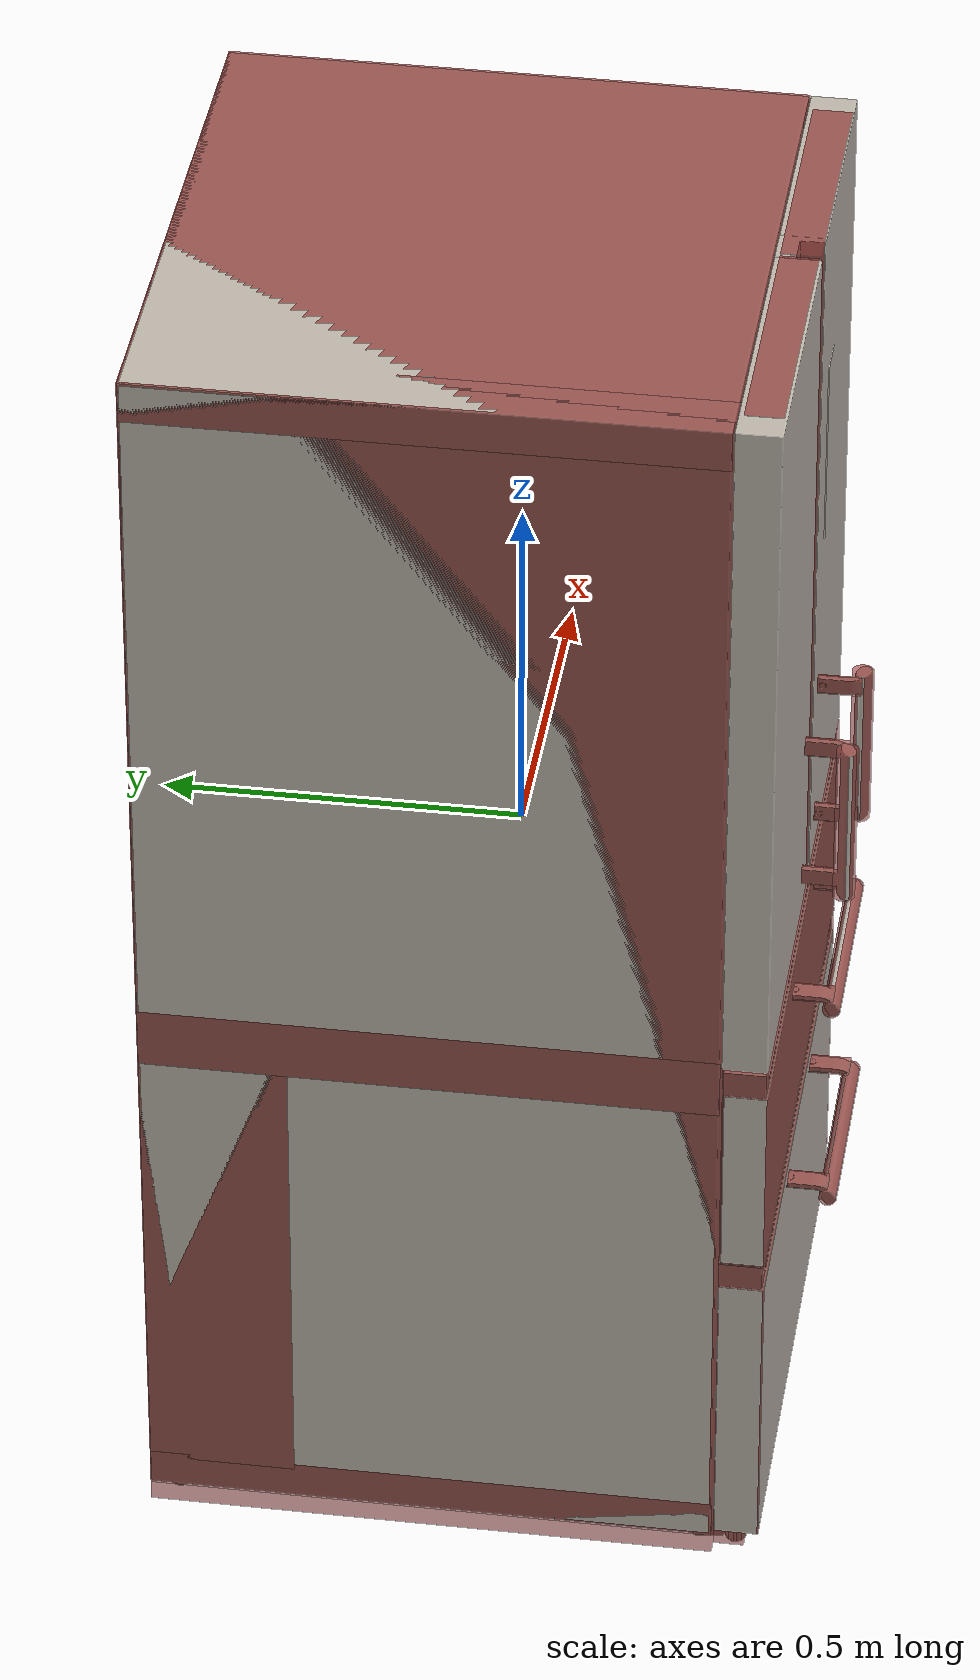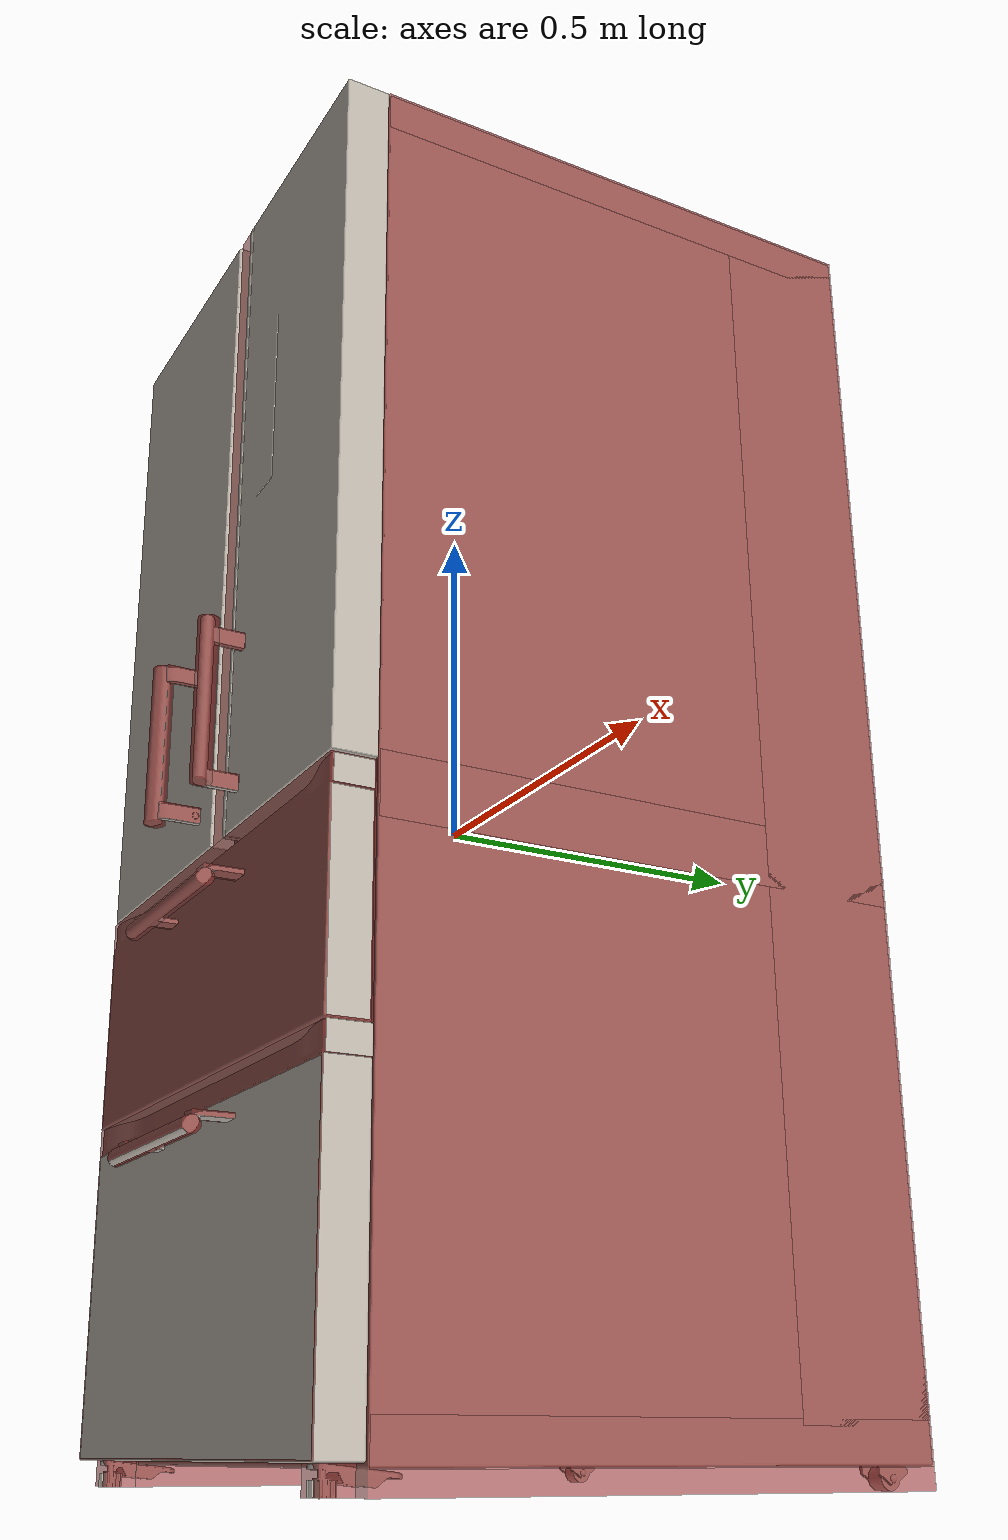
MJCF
<?xml version='1.0' encoding='UTF-8'?>
<mujoco model="model">
  <option timestep="0.002" gravity="0.0 0.0 -9.81"/>
  <compiler angle="radian"/>
  <asset>
    <mesh file="visuals/freezer0.obj" name="freezer0_vis"/>
    <mesh file="visuals/freezer1.obj" name="freezer1_vis"/>
    <mesh file="visuals/fridge_drawer0.obj" name="fridge_drawer0_vis"/>
    <mesh file="visuals/fridge_left_door.obj" name="fridge_left_door_vis"/>
    <mesh file="visuals/fridge_left_door_Clear.obj" name="fridge_left_door_Clear_vis"/>
    <mesh file="visuals/fridge_right_door.obj" name="fridge_right_door_vis"/>
    <mesh file="visuals/fridge_right_door_Clear.obj" name="fridge_right_door_Clear_vis"/>
    <mesh file="visuals/Body001.obj" name="Body001_vis"/>
    <mesh file="visuals/Body001_Clear.obj" name="Body001_Clear_vis"/>
    <texture file="visuals/T_BC001.png" name="Body001_material" type="2d"/>
    <material name="Body001_material" rgba="1 1 1 1.0" texture="Body001_material" shininess="0.1" specular="5"/>
    <texture file="visuals/T_BC001.png" name="freezer0_material" type="2d"/>
    <material name="freezer0_material" rgba="1 1 1 1.0" texture="freezer0_material" shininess="0.1" specular="5"/>
    <texture file="visuals/T_BC001.png" name="freezer1_material" type="2d"/>
    <material name="freezer1_material" rgba="1 1 1 1.0" texture="freezer1_material" shininess="0.1" specular="5"/>
    <texture file="visuals/T_BC001.png" name="fridge_drawer0_material" type="2d"/>
    <material name="fridge_drawer0_material" rgba="1 1 1 1.0" texture="fridge_drawer0_material" shininess="0.1" specular="5"/>
    <texture file="visuals/T_BC001.png" name="fridge_left_door_material" type="2d"/>
    <material name="fridge_left_door_material" rgba="1 1 1 1.0" texture="fridge_left_door_material" shininess="0.1" specular="5"/>
    <material name="fridge_left_door_Clear_material" rgba="0.749724805355072 0.749724805355072 0.749724805355072 0.699999988079071" shininess="0.141421377658844" specular="0.3103448502657381"/>
    <texture file="visuals/T_BC001.png" name="fridge_right_door_material" type="2d"/>
    <material name="fridge_right_door_material" rgba="1 1 1 1.0" texture="fridge_right_door_material" shininess="0.1" specular="5"/>
    <material name="fridge_right_door_Clear_material" rgba="0.749724805355072 0.749724805355072 0.749724805355072 0.699999988079071" shininess="0.141421377658844" specular="0.3103448502657381"/>
    <material name="Body001_Clear_material" rgba="0.749724805355072 0.749724805355072 0.749724805355072 0.699999988079071" shininess="0.141421377658844" specular="0.3103448502657381"/>
  </asset>
  <default>
    <default class="visual">
      <geom conaffinity="0" contype="0" group="1" type="mesh"/>
    </default>
    <default class="collision">
      <geom group="0" rgba="0.5 0 0 0.5"/>
    </default>
    <default class="spawn">
      <geom group="0" rgba="1 1 1 0.5" contype="0" conaffinity="0"/>
      <site group="0" rgba="1 1 1 0.5"/>
    </default>
    <default class="region">
      <geom group="1" conaffinity="0" contype="0" rgba="0 1 0 0"/>
    </default>
  </default>
  <worldbody>
    <body>
      <body name="object">
        <geom mesh="Body001_vis" type="mesh" solimp="0.998 0.998 0.001" solref="0.001 1" friction="0.95 0.3 0.1" class="visual" material="Body001_material"/>
        <geom class="collision" type="box" pos="3.725290298461914e-08 0.36271440982818604 0.03870001435279846" size="0.420244961977005 0.10254697501659393 0.8938395977020264" quat="1.0 0.0 0.0 0.0"/>
        <geom class="collision" type="box" pos="-0.383768230676651 0.06786757707595825 5.960464477539063e-08" size="0.036476727575063705 0.3973938226699829 0.9325395822525024" quat="1.0 0.0 0.0 0.0"/>
        <geom class="collision" type="box" pos="2.421438694000244e-08 0.06850025057792664 0.903540849685669" size="0.420244961977005 0.3967611789703369 0.02899870276451111" quat="1.0 0.0 0.0 0.0"/>
        <geom class="collision" type="box" pos="0.3831482529640198 0.06786757707595825 5.960464477539063e-08" size="0.037096697837114334 0.3973938226699829 0.9325395822525024" quat="1.0 0.0 0.0 0.0"/>
        <geom class="collision" type="box" pos="2.421438694000244e-08 0.06850025057792664 -0.11745168268680573" size="0.420244961977005 0.3967611789703369 0.043764565140008926" quat="1.0 0.0 0.0 0.0"/>
        <geom class="collision" type="box" pos="2.421438694000244e-08 0.06850025057792664 -0.8751527070999146" size="0.420244961977005 0.3967611789703369 0.028090566396713257" quat="1.0 0.0 0.0 0.0"/>
        <geom class="collision" type="box" pos="-0.0033921580761671066 -0.031038135290145874 0.5593169331550598" size="0.343149870634079 0.2678984999656677 0.0039847237057983875" quat="1.0 0.0 0.0 0.0"/>
        <geom class="collision" type="box" pos="-0.0033921580761671066 -0.04376785457134247 0.23902767896652222" size="0.34315016865730286 0.25470054149627686 0.003984728362411261" quat="1.0 0.0 0.0 0.0"/>
        <geom class="collision" type="box" pos="0.32959818840026855 -0.020736010745167732 0.5447321534156799" size="0.012320316396653652 0.25215694308280945 0.009214059449732304" quat="1.0 0.0 0.0 0.0"/>
        <geom class="collision" type="box" pos="-0.3379121422767639 -0.020736010745167732 0.5447321534156799" size="0.012320316396653652 0.25215694308280945 0.009214059449732304" quat="1.0 0.0 0.0 0.0"/>
        <geom class="collision" type="box" pos="-0.3379121422767639 -0.020736010745167732 0.22500215470790863" size="0.012320316396653652 0.25215694308280945 0.009214059449732304" quat="1.0 0.0 0.0 0.0"/>
        <geom class="collision" type="box" pos="0.32959818840026855 -0.020736010745167732 0.2252790331840515" size="0.012320316396653652 0.25215694308280945 0.009214059449732304" quat="1.0 0.0 0.0 0.0"/>
        <geom class="collision" type="box" pos="-0.3760225772857666 -0.35117390751838684 -0.9146504998207092" size="0.024222981184720993 0.021375611424446106 0.01788906380534172" quat="1.0 0.0 0.0 0.0"/>
        <geom class="collision" type="box" pos="0.36534348130226135 -0.35117390751838684 -0.9146504998207092" size="0.024222981184720993 0.021375611424446106 0.01788906380534172" quat="1.0 0.0 0.0 0.0"/>
        <body name="freezer0">
          <geom class="region" name="reg_freezer0" type="box" pos="0.0014047771692276 -0.022263318300247192 -0.6815381944179535" size="0.3173868933916092 0.25350178575515747 0.1460309455394745"/>
          <joint axis="0.0 -1.0 0.0" pos="0.0007861773483455181 -0.1080847829580307 -0.6571972370147705" limited="true" name="freezer0_door_joint" range="0.0 0.4" type="slide" damping="1" frictionloss="1" armature=".01" stiffness="0.05"/>
          <geom mesh="freezer0_vis" type="mesh" solimp="0.998 0.998 0.001" solref="0.001 1" friction="0.95 0.3 0.1" class="visual" material="freezer0_material"/>
          <geom class="collision" type="box" pos="0.000501888629514724 -0.3628769516944885 -0.6571394801139832" size="0.41758543252944946 0.031223760917782784 0.23801378905773163" quat="1.0 0.0 0.0 0.0" name="freezer0_door_main"/>
          <geom class="collision" type="box" pos="-0.3265295922756195 -0.03776751458644867 -0.6844683885574341" size="0.005799757782369852 0.28701984882354736 0.15341390669345856" quat="1.0 0.0 0.0 0.0"/>
          <geom class="collision" type="box" pos="0.00012455659452825785 0.2432796210050583 -0.6819210052490234" size="0.3350304663181305 0.0061573004350066185 0.15099649131298065" quat="1.0 0.0 0.0 0.0"/>
          <geom class="collision" type="box" pos="0.3293297588825226 -0.03776751458644867 -0.6844683885574341" size="0.005709691904485226 0.2870204448699951 0.15341418981552124" quat="1.0 0.0 0.0 0.0"/>
          <geom class="collision" type="box" pos="0.0007342882454395294 -0.0365728922188282 -0.8359146118164062" size="0.33688220381736755 0.2882153391838074 0.003502693260088563" quat="1.0 0.0 0.0 0.0"/>
          <geom class="collision" type="cylinder" pos="0.0024487851187586784 -0.45155343413352966 -0.5024803876876831" size="0.012515487149357796 0.15056449174880981" quat="0.7071068286895752 -0.0 0.7071067690849304 0.0" name="freezer0_door_handle_main"/>
          <geom class="collision" type="box" pos="-0.13126640021800995 -0.41574499011039734 -0.48698410391807556" size="0.014911450445652008 0.0346040315926075 0.00388008332811296" quat="1.0 0.0 0.0 0.0" name="freezer0_door_handle_1"/>
          <geom class="collision" type="box" pos="0.13468211889266968 -0.41574499011039734 -0.48698410391807556" size="0.01579238660633564 0.0346040315926075 0.00388008332811296" quat="1.0 0.0 0.0 0.0" name="freezer0_door_handle_2"/>
          <geom class="collision" type="box" pos="0.003610596526414156 -0.3075786530971527 -0.6721328496932983" size="0.32557451725006104 0.02526956982910633 0.16693054139614105" quat="1.0 0.0 0.0 0.0"/>
        </body>
        <body name="freezer1">
          <geom class="region" name="reg_freezer1" type="box" pos="-0.0008147507905960083 -0.020963557064533234 -0.2688698396086693" size="0.32515546476840973 0.2597028965353966 0.08024974709749222"/>
          <joint axis="0.0 -1.0 0.0" pos="-0.0002827136777341366 -0.10345551371574402 -0.2524600028991699" limited="true" name="freezer1_door_joint" range="0.0 0.4" type="slide" damping="1" frictionloss="1" armature=".01" stiffness="0.05"/>
          <geom mesh="freezer1_vis" type="mesh" solimp="0.998 0.998 0.001" solref="0.001 1" friction="0.95 0.3 0.1" class="visual" material="freezer1_material"/>
          <geom class="collision" type="box" pos="0.13133274018764496 -0.41574499011039734 -0.16297851502895355" size="0.01579238660633564 0.0346040315926075 0.00388008332811296" quat="1.0 0.0 0.0 0.0" name="freezer1_door_handle_2"/>
          <geom class="collision" type="box" pos="-0.1272403597831726 -0.41574499011039734 -0.16297851502895355" size="0.014911450445652008 0.0346040315926075 0.00388008332811296" quat="1.0 0.0 0.0 0.0" name="freezer1_door_handle_1"/>
          <geom class="collision" type="cylinder" pos="0.0023994995281100273 -0.44855526089668274 -0.17801834642887115" size="0.012515487149357796 0.14645937085151672" quat="0.7071068286895752 -0.0 0.7071067690849304 0.0" name="freezer1_door_handle_main"/>
          <geom class="collision" type="box" pos="0.0007342882454395294 -0.0365728922188282 -0.35785308480262756" size="0.3368796110153198 0.28821274638175964 0.003502652747556567" quat="1.0 0.0 0.0 0.0"/>
          <geom class="collision" type="box" pos="0.33268946409225464 -0.03697865828871727 -0.27170833945274353" size="0.003571681911125779 0.28780725598335266 0.08811339735984802" quat="1.0 0.0 0.0 0.0"/>
          <geom class="collision" type="box" pos="0.00012455659452825785 0.2496434450149536 -0.2691609263420105" size="0.3350290358066559 0.00615725526586175 0.08569592237472534" quat="1.0 0.0 0.0 0.0"/>
          <geom class="collision" type="box" pos="-0.33419832587242126 -0.03697865828871727 -0.27170833945274353" size="0.003375586587935686 0.2878078520298004 0.08811354637145996" quat="1.0 0.0 0.0 0.0"/>
          <geom class="collision" type="box" pos="-0.00016142586537171155 -0.3627449870109558 -0.25261422991752625" size="0.4188118577003479 0.031091785058379173 0.16448022425174713" quat="1.0 0.0 0.0 0.0" name="freezer1_door_main"/>
          <geom class="collision" type="box" pos="0.003610596526414156 -0.3093831241130829 -0.27542468905448914" size="0.32557451725006104 0.02346511371433735 0.10049207508563995" quat="1.0 0.0 0.0 0.0"/>
        </body>
        <body name="fridge_drawer0">
          <geom class="region" name="reg_fridge_drawer0" type="box" pos="-0.00048007071018218994 0.0004540085792541504 0.0877399486489594" size="0.3050018230676651 0.20271432197093964 0.09919079516455531"/>
          <joint axis="0.0 -1.0 0.0" pos="-0.0009992157574743032 -0.009178592823445797 0.08161954581737518" limited="true" name="fridge_drawer0_joint" range="0.0 0.45" type="slide" damping="1" frictionloss="1" armature=".01" stiffness="0.05"/>
          <geom mesh="fridge_drawer0_vis" type="mesh" solimp="0.998 0.998 0.001" solref="0.001 1" friction="0.95 0.3 0.1" class="visual" material="fridge_drawer0_material"/>
          <geom class="collision" type="box" pos="-0.00010304944589734077 -0.22352641820907593 0.17765425145626068" size="0.3263534605503082 0.015158834867179394 0.025532877072691917" quat="1.0 0.0 0.0 0.0"/>
          <geom class="collision" type="box" pos="-0.0006536231376230717 0.0015832597855478525 -0.020570896565914154" size="0.31079521775245667 0.21130329370498657 0.0041618673130869865" quat="1.0 0.0 0.0 0.0"/>
          <geom class="collision" type="box" pos="0.002024431247264147 0.21657805144786835 0.08574830740690231" size="0.3109680116176605 0.005564892198890448 0.10538765043020248" quat="1.0 0.0 0.0 0.0"/>
          <geom class="collision" type="box" pos="-0.3170004189014435 0.003999524749815464 0.08574831485748291" size="0.005672971718013287 0.2138131707906723 0.10538768023252487" quat="1.0 0.0 0.0 0.0"/>
          <geom class="collision" type="box" pos="0.31603583693504333 0.00970494281500578 0.0857483297586441" size="0.005672986153513193 0.21951986849308014 0.10538770258426666" quat="1.0 0.0 0.0 0.0"/>
          <geom class="collision" type="box" pos="-0.00010304944589734077 -0.22283580899238586 0.017555980011820793" size="0.3263881802558899 0.015851691365242004 0.06095428392291069" quat="1.0 0.0 0.0 0.0"/>
          <geom class="collision" type="box" pos="-0.18560145795345306 -0.22352641820907593 0.11375938355922699" size="0.14089567959308624 0.015161125920712948 0.03786836192011833" quat="1.0 0.0 0.0 0.0"/>
          <geom class="collision" type="box" pos="0.20693247020244598 -0.22352641820907593 0.11375938355922699" size="0.11823832988739014 0.015161196701228619 0.03786836192011833" quat="1.0 0.0 0.0 0.0"/>
          <geom class="collision" type="box" pos="0.023325106129050255 -0.23617392778396606 0.13930220901966095" size="0.06702551245689392 0.0025141588412225246 0.012567557394504547" quat="1.0 0.0 0.0 0.0"/>
          <geom class="collision" type="box" pos="0.023325106129050255 -0.2100522667169571 0.11408466100692749" size="0.06702577322721481 0.0013392593245953321 0.036608051508665085" quat="1.0 0.0 0.0 0.0"/>
        </body>
        <body name="fridge_left_door">
          <joint axis="0.0 0.0 -1.0" pos="-0.3864901065826416 -0.3609431982040405 0.44345515966415405" limited="true" name="fridge_left_door_joint" range="0.0 1.5707963267948966" type="hinge" damping="1" frictionloss="1" armature=".01" stiffness="0.05"/>
          <geom mesh="fridge_left_door_vis" type="mesh" solimp="0.998 0.998 0.001" solref="0.001 1" friction="0.95 0.3 0.1" class="visual" material="fridge_left_door_material"/>
          <geom class="collision" type="box" pos="-0.046793416142463684 -0.4180055856704712 0.19212187826633453" size="0.005391678307205439 0.03605390340089798 0.01194847747683525" quat="1.0 0.0 0.0 0.0" name="fridge_left_door_handle_1"/>
          <geom class="collision" type="box" pos="-0.046793416142463684 -0.4180055856704712 -0.022409191355109215" size="0.005391678307205439 0.03605390340089798 0.011779187247157097" quat="1.0 0.0 0.0 0.0" name="fridge_left_door_handle_2"/>
          <geom class="collision" type="box" pos="-0.19422337412834167 -0.35832902789115906 0.7967945337295532" size="0.13999596238136292 0.0018340981332585216 0.032336894422769547" quat="1.0 0.0 0.0 0.0"/>
          <geom class="collision" type="box" pos="-0.19533081352710724 -0.31266695261001587 0.7686464190483093" size="0.13915126025676727 0.04666637256741524 0.004413849674165249" quat="1.0 0.0 0.0 0.0"/>
          <geom class="collision" type="box" pos="-0.19422337412834167 -0.2726524770259857 0.7967945337295532" size="0.13999596238136292 0.0018340981332585216 0.032336894422769547" quat="0.9952298998832703 0.09755751490592957 0.0 0.0"/>
          <geom class="collision" type="box" pos="-0.33259207010269165 -0.31493836641311646 0.7967945337295532" size="0.0022138787899166346 0.0426444411277771 0.032336894422769547" quat="1.0 0.0 0.0 0.0"/>
          <geom class="collision" type="box" pos="-0.05629025772213936 -0.31493836641311646 0.7967945337295532" size="0.0022138787899166346 0.0426444411277771 0.032336894422769547" quat="1.0 0.0 0.0 0.0"/>
          <geom class="collision" type="box" pos="-0.19422337412834167 -0.35832902789115906 0.44336405396461487" size="0.13999596238136292 0.0018340981332585216 0.032336894422769547" quat="1.0 0.0 0.0 0.0"/>
          <geom class="collision" type="box" pos="-0.05629025772213936 -0.31493836641311646 0.44336405396461487" size="0.0022138787899166346 0.0426444411277771 0.032336894422769547" quat="1.0 0.0 0.0 0.0"/>
          <geom class="collision" type="box" pos="-0.33259207010269165 -0.31493836641311646 0.44336405396461487" size="0.0022138787899166346 0.0426444411277771 0.032336894422769547" quat="1.0 0.0 0.0 0.0"/>
          <geom class="collision" type="box" pos="-0.19422337412834167 -0.2726524770259857 0.44336405396461487" size="0.13999596238136292 0.0018340981332585216 0.032336894422769547" quat="0.9952298998832703 0.09755751490592957 0.0 0.0"/>
          <geom class="collision" type="box" pos="-0.19533081352710724 -0.31266695261001587 0.41521593928337097" size="0.13915126025676727 0.04666637256741524 0.004413849674165249" quat="1.0 0.0 0.0 0.0"/>
          <geom class="collision" type="cylinder" pos="-0.0658530592918396 -0.45307570695877075 0.08398246765136719" size="0.015368785709142685 0.12188371270895004" quat="1.0 0.0 0.0 0.0" name="fridge_left_door_handle_main"/>
          <geom class="collision" type="box" pos="-0.18426960706710815 -0.36300912499427795 0.4235662519931793" size="0.19255331158638 0.026028752326965332 0.5096153020858765" quat="1.0 0.0 0.0 0.0" name="fridge_left_door_main"/>
          <body name="fridge_left_door_Clear">
            <geom mesh="fridge_left_door_Clear_vis" type="mesh" solimp="0.998 0.998 0.001" solref="0.001 1" friction="0.95 0.3 0.1" class="visual" material="fridge_left_door_Clear_material"/>
            <geom class="collision" type="box" pos="-0.19422337412834167 -0.35832902789115906 0.7967945337295532" size="0.13999596238136292 0.0018340981332585216 0.032336894422769547" quat="1.0 0.0 0.0 0.0"/>
            <geom class="collision" type="box" pos="-0.19533081352710724 -0.31266695261001587 0.7686464190483093" size="0.13915126025676727 0.04666637256741524 0.004413849674165249" quat="1.0 0.0 0.0 0.0"/>
            <geom class="collision" type="box" pos="-0.19422337412834167 -0.2726524770259857 0.7967945337295532" size="0.13999596238136292 0.0018340981332585216 0.032336894422769547" quat="0.9952298998832703 0.09755751490592957 0.0 0.0"/>
            <geom class="collision" type="box" pos="-0.33259207010269165 -0.31493836641311646 0.7967945337295532" size="0.0022138787899166346 0.0426444411277771 0.032336894422769547" quat="1.0 0.0 0.0 0.0"/>
            <geom class="collision" type="box" pos="-0.05629025772213936 -0.31493836641311646 0.7967945337295532" size="0.0022138787899166346 0.0426444411277771 0.032336894422769547" quat="1.0 0.0 0.0 0.0"/>
            <geom class="collision" type="box" pos="-0.19422337412834167 -0.35832902789115906 0.44336405396461487" size="0.13999596238136292 0.0018340981332585216 0.032336894422769547" quat="1.0 0.0 0.0 0.0"/>
            <geom class="collision" type="box" pos="-0.05629025772213936 -0.31493836641311646 0.44336405396461487" size="0.0022138787899166346 0.0426444411277771 0.032336894422769547" quat="1.0 0.0 0.0 0.0"/>
            <geom class="collision" type="box" pos="-0.33259207010269165 -0.31493836641311646 0.44336405396461487" size="0.0022138787899166346 0.0426444411277771 0.032336894422769547" quat="1.0 0.0 0.0 0.0"/>
            <geom class="collision" type="box" pos="-0.19422337412834167 -0.2726524770259857 0.44336405396461487" size="0.13999596238136292 0.0018340981332585216 0.032336894422769547" quat="0.9952298998832703 0.09755751490592957 0.0 0.0"/>
            <geom class="collision" type="box" pos="-0.19533081352710724 -0.31266695261001587 0.41521593928337097" size="0.13915126025676727 0.04666637256741524 0.004413849674165249" quat="1.0 0.0 0.0 0.0"/>
          </body>
        </body>
        <body name="fridge_right_door">
          <joint axis="0.0 0.0 1.0" pos="0.3863397538661957 -0.3625793755054474 0.44345515966415405" limited="true" name="fridge_right_door_joint" range="0.0 1.5707963267948966" type="hinge" damping="1" frictionloss="1" armature=".01" stiffness="0.05"/>
          <geom mesh="fridge_right_door_vis" type="mesh" solimp="0.998 0.998 0.001" solref="0.001 1" friction="0.95 0.3 0.1" class="visual" material="fridge_right_door_material"/>
          <geom class="collision" type="box" pos="0.22823141515254974 -0.31266695261001587 0.3187921941280365" size="0.10381898283958435 0.04666637256741524 0.004413849674165249" quat="1.0 0.0 0.0 0.0"/>
          <geom class="collision" type="box" pos="0.2293388545513153 -0.2715527415275574 0.36241352558135986" size="0.10466369241476059 0.0021701871883124113 0.04731038957834244" quat="0.9972224831581116 0.07448069751262665 0.0 0.0"/>
          <geom class="collision" type="box" pos="0.12630242109298706 -0.31493836641311646 0.36222249269485474" size="0.0022138787899166346 0.0426444411277771 0.04761907830834389" quat="1.0 0.0 0.0 0.0"/>
          <geom class="collision" type="box" pos="0.331939697265625 -0.31493836641311646 0.36222249269485474" size="0.0022138787899166346 0.0426444411277771 0.04761907830834389" quat="1.0 0.0 0.0 0.0"/>
          <geom class="collision" type="box" pos="0.2293388545513153 -0.35832902789115906 0.36222249269485474" size="0.10466369241476059 0.0018340981332585216 0.04761907830834389" quat="1.0 0.0 0.0 0.0"/>
          <geom class="collision" type="box" pos="0.2293388545513153 -0.35832902789115906 0.6658515930175781" size="0.10466369241476059 0.0018340981332585216 0.04761907830834389" quat="1.0 0.0 0.0 0.0"/>
          <geom class="collision" type="box" pos="0.331939697265625 -0.31493836641311646 0.6658515930175781" size="0.0022138787899166346 0.0426444411277771 0.04761907830834389" quat="1.0 0.0 0.0 0.0"/>
          <geom class="collision" type="box" pos="0.12630242109298706 -0.31493836641311646 0.6658515930175781" size="0.0022138787899166346 0.0426444411277771 0.04761907830834389" quat="1.0 0.0 0.0 0.0"/>
          <geom class="collision" type="box" pos="0.2293388545513153 -0.2715527415275574 0.6660426259040833" size="0.10466369241476059 0.0021701871883124113 0.04731038957834244" quat="0.9972224831581116 0.07448069751262665 0.0 0.0"/>
          <geom class="collision" type="box" pos="0.22823141515254974 -0.31266695261001587 0.6224212646484375" size="0.10381898283958435 0.04666637256741524 0.004413849674165249" quat="1.0 0.0 0.0 0.0"/>
          <geom class="collision" type="cylinder" pos="0.12180572003126144 -0.45307570695877075 0.08398246765136719" size="0.015368785709142685 0.12188371270895004" quat="1.0 0.0 0.0 0.0" name="fridge_right_door_handle_main"/>
          <geom class="collision" type="box" pos="0.10274607688188553 -0.4180055856704712 -0.022409191355109215" size="0.005391678307205439 0.03605390340089798 0.011779187247157097" quat="1.0 0.0 0.0 0.0" name="fridge_right_door_handle_2"/>
          <geom class="collision" type="box" pos="0.10274607688188553 -0.4180055856704712 0.19212187826633453" size="0.005391678307205439 0.03605390340089798 0.01194847747683525" quat="1.0 0.0 0.0 0.0" name="fridge_right_door_handle_1"/>
          <geom class="collision" type="box" pos="0.1979413628578186 -0.36416175961494446 0.42356622219085693" size="0.18441681563854218 0.02718137949705124 0.5096126794815063" quat="1.0 0.0 0.0 0.0" name="fridge_right_door_main"/>
          <body name="fridge_right_door_Clear">
            <geom mesh="fridge_right_door_Clear_vis" type="mesh" solimp="0.998 0.998 0.001" solref="0.001 1" friction="0.95 0.3 0.1" class="visual" material="fridge_right_door_Clear_material"/>
            <geom class="collision" type="box" pos="0.22823141515254974 -0.31266695261001587 0.3187921941280365" size="0.10381898283958435 0.04666637256741524 0.004413849674165249" quat="1.0 0.0 0.0 0.0"/>
            <geom class="collision" type="box" pos="0.2293388545513153 -0.2715527415275574 0.36241352558135986" size="0.10466369241476059 0.0021701871883124113 0.04731038957834244" quat="0.9972224831581116 0.07448069751262665 0.0 0.0"/>
            <geom class="collision" type="box" pos="0.12630242109298706 -0.31493836641311646 0.36222249269485474" size="0.0022138787899166346 0.0426444411277771 0.04761907830834389" quat="1.0 0.0 0.0 0.0"/>
            <geom class="collision" type="box" pos="0.331939697265625 -0.31493836641311646 0.36222249269485474" size="0.0022138787899166346 0.0426444411277771 0.04761907830834389" quat="1.0 0.0 0.0 0.0"/>
            <geom class="collision" type="box" pos="0.2293388545513153 -0.35832902789115906 0.36222249269485474" size="0.10466369241476059 0.0018340981332585216 0.04761907830834389" quat="1.0 0.0 0.0 0.0"/>
            <geom class="collision" type="box" pos="0.2293388545513153 -0.35832902789115906 0.6658515930175781" size="0.10466369241476059 0.0018340981332585216 0.04761907830834389" quat="1.0 0.0 0.0 0.0"/>
            <geom class="collision" type="box" pos="0.331939697265625 -0.31493836641311646 0.6658515930175781" size="0.0022138787899166346 0.0426444411277771 0.04761907830834389" quat="1.0 0.0 0.0 0.0"/>
            <geom class="collision" type="box" pos="0.12630242109298706 -0.31493836641311646 0.6658515930175781" size="0.0022138787899166346 0.0426444411277771 0.04761907830834389" quat="1.0 0.0 0.0 0.0"/>
            <geom class="collision" type="box" pos="0.2293388545513153 -0.2715527415275574 0.6660426259040833" size="0.10466369241476059 0.0021701871883124113 0.04731038957834244" quat="0.9972224831581116 0.07448069751262665 0.0 0.0"/>
            <geom class="collision" type="box" pos="0.22823141515254974 -0.31266695261001587 0.6224212646484375" size="0.10381898283958435 0.04666637256741524 0.004413849674165249" quat="1.0 0.0 0.0 0.0"/>
          </body>
        </body>
        <body name="Body001_Clear">
          <geom mesh="Body001_Clear_vis" type="mesh" solimp="0.998 0.998 0.001" solref="0.001 1" friction="0.95 0.3 0.1" class="visual" material="Body001_Clear_material"/>
          <geom class="collision" type="box" pos="-0.0033921580761671066 -0.031038135290145874 0.5593169331550598" size="0.343149870634079 0.2678984999656677 0.0039847237057983875" quat="1.0 0.0 0.0 0.0"/>
          <geom class="collision" type="box" pos="-0.0033921580761671066 -0.04376785457134247 0.23902767896652222" size="0.34315016865730286 0.25470054149627686 0.003984728362411261" quat="1.0 0.0 0.0 0.0"/>
        </body>
        <geom class="region" name="reg_fridge_shelf0" type="box" pos="0.007279887795448303 0.0038480907678604126 0.40282170474529266" size="0.3282724896669388 0.25091242587566376 0.1468296924829483"/>
        <geom class="region" name="reg_fridge_shelf1" type="box" pos="-0.0005152970552444458 0.0031006336212158203 0.7212181985378265" size="0.33606767451763153 0.25147624111175537 0.14604709839820862"/>
        <geom class="region" name="reg_main" type="box" pos="-7.450580596923828e-09 0.03558003902435303 0.0" size="0.421244961977005 0.43068136072158814 0.9335395822525024"/>
      </body>
    </body>
  </worldbody>
  <actuator>
    <motor name="freezer0_door_joint_actuator" joint="freezer0_door_joint" gear="50"/>
    <motor name="freezer1_door_joint_actuator" joint="freezer1_door_joint" gear="50"/>
    <motor name="fridge_drawer0_joint_actuator" joint="fridge_drawer0_joint" gear="50"/>
    <motor name="fridge_left_door_joint_actuator" joint="fridge_left_door_joint" gear="50"/>
    <motor name="fridge_right_door_joint_actuator" joint="fridge_right_door_joint" gear="50"/>
  </actuator>
</mujoco>
